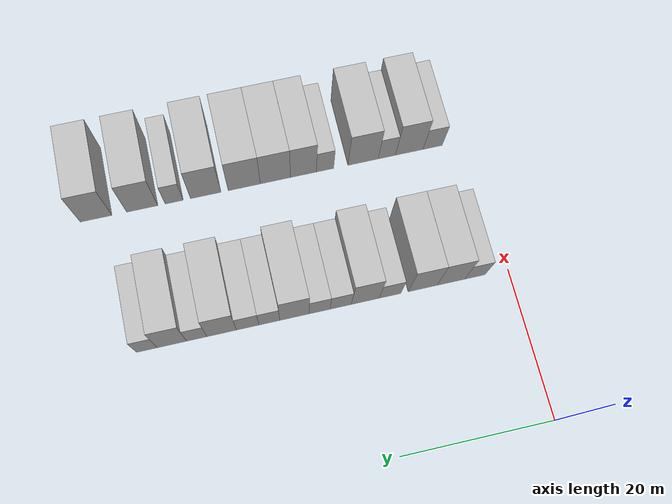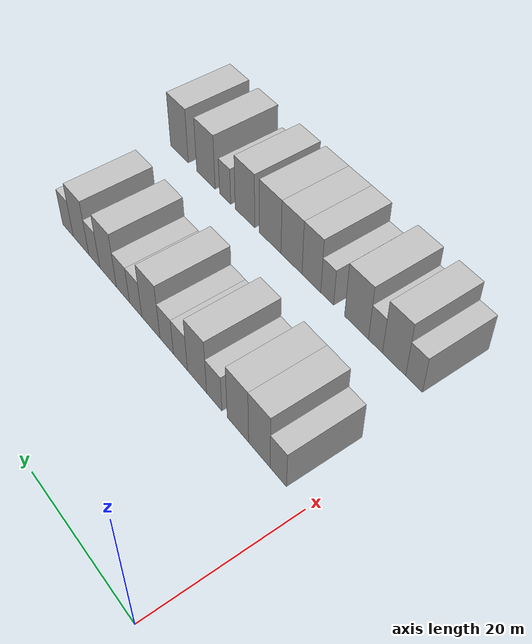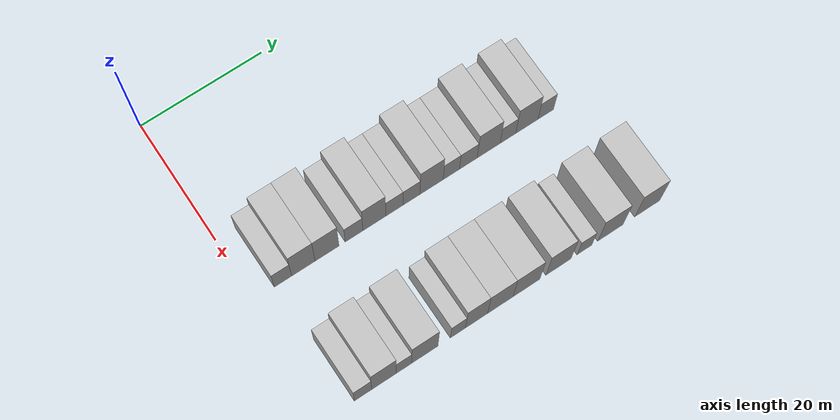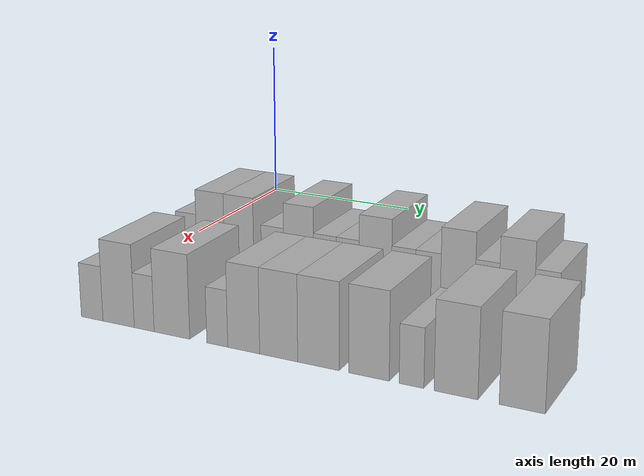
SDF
<sdf version="1.6">
 <world name="default">
  <model name="building_52">
   <static>1</static>
   <pose>25.0000 4.5672 0 0.000000 0.000000 0.000000</pose>
   <link name="link">
    <pose>0 0 3.00 0 0 0</pose>
    <collision name="collision"><geometry><box><size>10.0000 2.7934 6.0000</size></box></geometry></collision>
    <visual name="visual">
     <cast_shadows>0</cast_shadows>
     <geometry><box><size>10.0000 2.7934 6.0000</size></box></geometry>
     <material>
      <script>
       <uri>model://HANNAS_wall/materials/scripts</uri>
       <uri>model://HANNAS_wall/materials/textures</uri>
       <name>vrc/HANNAS_wall</name>
      </script>
     </material>
    </visual>
   </link>
  </model>
  <model name="building_53">
   <static>1</static>
   <pose>25.0000 7.8485 0 0.000000 0.000000 0.000000</pose>
   <link name="link">
    <pose>0 0 4.50 0 0 0</pose>
    <collision name="collision"><geometry><box><size>10.0000 3.7693 9.0000</size></box></geometry></collision>
    <visual name="visual">
     <cast_shadows>0</cast_shadows>
     <geometry><box><size>10.0000 3.7693 9.0000</size></box></geometry>
     <material>
      <script>
       <uri>model://HANNAS_wall/materials/scripts</uri>
       <uri>model://HANNAS_wall/materials/textures</uri>
       <name>vrc/HANNAS_wall</name>
      </script>
     </material>
    </visual>
   </link>
  </model>
  <model name="building_54">
   <static>1</static>
   <pose>25.0000 11.6769 0 0.000000 0.000000 0.000000</pose>
   <link name="link">
    <pose>0 0 4.50 0 0 0</pose>
    <collision name="collision"><geometry><box><size>10.0000 3.8874 9.0000</size></box></geometry></collision>
    <visual name="visual">
     <cast_shadows>0</cast_shadows>
     <geometry><box><size>10.0000 3.8874 9.0000</size></box></geometry>
     <material>
      <script>
       <uri>model://HANNAS_wall/materials/scripts</uri>
       <uri>model://HANNAS_wall/materials/textures</uri>
       <name>vrc/HANNAS_wall</name>
      </script>
     </material>
    </visual>
   </link>
  </model>
  <model name="building_55">
   <static>1</static>
   <pose>25.0000 16.0649 0 0.000000 0.000000 0.000000</pose>
   <link name="link">
    <pose>0 0 3.00 0 0 0</pose>
    <collision name="collision"><geometry><box><size>10.0000 2.8887 6.0000</size></box></geometry></collision>
    <visual name="visual">
     <cast_shadows>0</cast_shadows>
     <geometry><box><size>10.0000 2.8887 6.0000</size></box></geometry>
     <material>
      <script>
       <uri>model://HANNAS_wall/materials/scripts</uri>
       <uri>model://HANNAS_wall/materials/textures</uri>
       <name>vrc/HANNAS_wall</name>
      </script>
     </material>
    </visual>
   </link>
  </model>
  <model name="building_56">
   <static>1</static>
   <pose>25.0000 19.3862 0 0.000000 0.000000 0.000000</pose>
   <link name="link">
    <pose>0 0 4.50 0 0 0</pose>
    <collision name="collision"><geometry><box><size>10.0000 3.7539 9.0000</size></box></geometry></collision>
    <visual name="visual">
     <cast_shadows>0</cast_shadows>
     <geometry><box><size>10.0000 3.7539 9.0000</size></box></geometry>
     <material>
      <script>
       <uri>model://HANNAS_wall/materials/scripts</uri>
       <uri>model://HANNAS_wall/materials/textures</uri>
       <name>vrc/HANNAS_wall</name>
      </script>
     </material>
    </visual>
   </link>
  </model>
  <model name="building_57">
   <static>1</static>
   <pose>25.0000 22.6786 0 0.000000 0.000000 0.000000</pose>
   <link name="link">
    <pose>0 0 3.00 0 0 0</pose>
    <collision name="collision"><geometry><box><size>10.0000 2.8309 6.0000</size></box></geometry></collision>
    <visual name="visual">
     <cast_shadows>0</cast_shadows>
     <geometry><box><size>10.0000 2.8309 6.0000</size></box></geometry>
     <material>
      <script>
       <uri>model://HANNAS_wall/materials/scripts</uri>
       <uri>model://HANNAS_wall/materials/textures</uri>
       <name>vrc/HANNAS_wall</name>
      </script>
     </material>
    </visual>
   </link>
  </model>
  <model name="building_58">
   <static>1</static>
   <pose>25.0000 25.4941 0 0.000000 0.000000 0.000000</pose>
   <link name="link">
    <pose>0 0 3.00 0 0 0</pose>
    <collision name="collision"><geometry><box><size>10.0000 2.8000 6.0000</size></box></geometry></collision>
    <visual name="visual">
     <cast_shadows>0</cast_shadows>
     <geometry><box><size>10.0000 2.8000 6.0000</size></box></geometry>
     <material>
      <script>
       <uri>model://HANNAS_wall/materials/scripts</uri>
       <uri>model://HANNAS_wall/materials/textures</uri>
       <name>vrc/HANNAS_wall</name>
      </script>
     </material>
    </visual>
   </link>
  </model>
  <model name="building_59">
   <static>1</static>
   <pose>25.0000 28.8287 0 0.000000 0.000000 0.000000</pose>
   <link name="link">
    <pose>0 0 4.50 0 0 0</pose>
    <collision name="collision"><geometry><box><size>10.0000 3.8693 9.0000</size></box></geometry></collision>
    <visual name="visual">
     <cast_shadows>0</cast_shadows>
     <geometry><box><size>10.0000 3.8693 9.0000</size></box></geometry>
     <material>
      <script>
       <uri>model://HANNAS_wall/materials/scripts</uri>
       <uri>model://HANNAS_wall/materials/textures</uri>
       <name>vrc/HANNAS_wall</name>
      </script>
     </material>
    </visual>
   </link>
  </model>
  <model name="building_60">
   <static>1</static>
   <pose>25.0000 32.1328 0 0.000000 0.000000 0.000000</pose>
   <link name="link">
    <pose>0 0 3.00 0 0 0</pose>
    <collision name="collision"><geometry><box><size>10.0000 2.7389 6.0000</size></box></geometry></collision>
    <visual name="visual">
     <cast_shadows>0</cast_shadows>
     <geometry><box><size>10.0000 2.7389 6.0000</size></box></geometry>
     <material>
      <script>
       <uri>model://HANNAS_wall/materials/scripts</uri>
       <uri>model://HANNAS_wall/materials/textures</uri>
       <name>vrc/HANNAS_wall</name>
      </script>
     </material>
    </visual>
   </link>
  </model>
  <model name="building_61">
   <static>1</static>
   <pose>25.0000 34.9727 0 0.000000 0.000000 0.000000</pose>
   <link name="link">
    <pose>0 0 3.00 0 0 0</pose>
    <collision name="collision"><geometry><box><size>10.0000 2.9410 6.0000</size></box></geometry></collision>
    <visual name="visual">
     <cast_shadows>0</cast_shadows>
     <geometry><box><size>10.0000 2.9410 6.0000</size></box></geometry>
     <material>
      <script>
       <uri>model://HANNAS_wall/materials/scripts</uri>
       <uri>model://HANNAS_wall/materials/textures</uri>
       <name>vrc/HANNAS_wall</name>
      </script>
     </material>
    </visual>
   </link>
  </model>
  <model name="building_62">
   <static>1</static>
   <pose>25.0000 38.3796 0 0.000000 0.000000 0.000000</pose>
   <link name="link">
    <pose>0 0 4.50 0 0 0</pose>
    <collision name="collision"><geometry><box><size>10.0000 3.8727 9.0000</size></box></geometry></collision>
    <visual name="visual">
     <cast_shadows>0</cast_shadows>
     <geometry><box><size>10.0000 3.8727 9.0000</size></box></geometry>
     <material>
      <script>
       <uri>model://HANNAS_wall/materials/scripts</uri>
       <uri>model://HANNAS_wall/materials/textures</uri>
       <name>vrc/HANNAS_wall</name>
      </script>
     </material>
    </visual>
   </link>
  </model>
  <model name="building_63">
   <static>1</static>
   <pose>25.0000 41.6338 0 0.000000 0.000000 0.000000</pose>
   <link name="link">
    <pose>0 0 3.00 0 0 0</pose>
    <collision name="collision"><geometry><box><size>10.0000 2.6359 6.0000</size></box></geometry></collision>
    <visual name="visual">
     <cast_shadows>0</cast_shadows>
     <geometry><box><size>10.0000 2.6359 6.0000</size></box></geometry>
     <material>
      <script>
       <uri>model://HANNAS_wall/materials/scripts</uri>
       <uri>model://HANNAS_wall/materials/textures</uri>
       <name>vrc/HANNAS_wall</name>
      </script>
     </material>
    </visual>
   </link>
  </model>
  <model name="building_64">
   <static>1</static>
   <pose>25.0000 44.8559 0 0.000000 0.000000 0.000000</pose>
   <link name="link">
    <pose>0 0 4.50 0 0 0</pose>
    <collision name="collision"><geometry><box><size>10.0000 3.8082 9.0000</size></box></geometry></collision>
    <visual name="visual">
     <cast_shadows>0</cast_shadows>
     <geometry><box><size>10.0000 3.8082 9.0000</size></box></geometry>
     <material>
      <script>
       <uri>model://HANNAS_wall/materials/scripts</uri>
       <uri>model://HANNAS_wall/materials/textures</uri>
       <name>vrc/HANNAS_wall</name>
      </script>
     </material>
    </visual>
   </link>
  </model>
  <model name="building_65">
   <static>1</static>
   <pose>25.0000 48.1008 0 0.000000 0.000000 0.000000</pose>
   <link name="link">
    <pose>0 0 3.00 0 0 0</pose>
    <collision name="collision"><geometry><box><size>10.0000 2.6816 6.0000</size></box></geometry></collision>
    <visual name="visual">
     <cast_shadows>0</cast_shadows>
     <geometry><box><size>10.0000 2.6816 6.0000</size></box></geometry>
     <material>
      <script>
       <uri>model://HANNAS_wall/materials/scripts</uri>
       <uri>model://HANNAS_wall/materials/textures</uri>
       <name>vrc/HANNAS_wall</name>
      </script>
     </material>
    </visual>
   </link>
  </model>
  <model name="building_156">
   <static>1</static>
   <pose>44.0000 5.0749 0 0.000000 0.000000 0.000000</pose>
   <link name="link">
    <pose>0 0 3.00 0 0 0</pose>
    <collision name="collision"><geometry><box><size>10.0000 2.7551 6.0000</size></box></geometry></collision>
    <visual name="visual">
     <cast_shadows>0</cast_shadows>
     <geometry><box><size>10.0000 2.7551 6.0000</size></box></geometry>
     <material>
      <script>
       <uri>model://HANNAS_wall/materials/scripts</uri>
       <uri>model://HANNAS_wall/materials/textures</uri>
       <name>vrc/HANNAS_wall</name>
      </script>
     </material>
    </visual>
   </link>
  </model>
  <model name="building_157">
   <static>1</static>
   <pose>44.0000 8.4119 0 0.000000 0.000000 0.000000</pose>
   <link name="link">
    <pose>0 0 4.50 0 0 0</pose>
    <collision name="collision"><geometry><box><size>10.0000 3.9190 9.0000</size></box></geometry></collision>
    <visual name="visual">
     <cast_shadows>0</cast_shadows>
     <geometry><box><size>10.0000 3.9190 9.0000</size></box></geometry>
     <material>
      <script>
       <uri>model://HANNAS_wall/materials/scripts</uri>
       <uri>model://HANNAS_wall/materials/textures</uri>
       <name>vrc/HANNAS_wall</name>
      </script>
     </material>
    </visual>
   </link>
  </model>
  <model name="building_158">
   <static>1</static>
   <pose>44.0000 11.5869 0 0.000000 0.000000 0.000000</pose>
   <link name="link">
    <pose>0 0 3.00 0 0 0</pose>
    <collision name="collision"><geometry><box><size>10.0000 2.4311 6.0000</size></box></geometry></collision>
    <visual name="visual">
     <cast_shadows>0</cast_shadows>
     <geometry><box><size>10.0000 2.4311 6.0000</size></box></geometry>
     <material>
      <script>
       <uri>model://HANNAS_wall/materials/scripts</uri>
       <uri>model://HANNAS_wall/materials/textures</uri>
       <name>vrc/HANNAS_wall</name>
      </script>
     </material>
    </visual>
   </link>
  </model>
  <model name="building_159">
   <static>1</static>
   <pose>44.0000 14.9344 0 0.000000 0.000000 0.000000</pose>
   <link name="link">
    <pose>0 0 4.50 0 0 0</pose>
    <collision name="collision"><geometry><box><size>10.0000 4.2639 9.0000</size></box></geometry></collision>
    <visual name="visual">
     <cast_shadows>0</cast_shadows>
     <geometry><box><size>10.0000 4.2639 9.0000</size></box></geometry>
     <material>
      <script>
       <uri>model://HANNAS_wall/materials/scripts</uri>
       <uri>model://HANNAS_wall/materials/textures</uri>
       <name>vrc/HANNAS_wall</name>
      </script>
     </material>
    </visual>
   </link>
  </model>
  <model name="building_160">
   <static>1</static>
   <pose>44.0000 20.2797 0 0.000000 0.000000 0.000000</pose>
   <link name="link">
    <pose>0 0 3.00 0 0 0</pose>
    <collision name="collision"><geometry><box><size>10.0000 2.4267 6.0000</size></box></geometry></collision>
    <visual name="visual">
     <cast_shadows>0</cast_shadows>
     <geometry><box><size>10.0000 2.4267 6.0000</size></box></geometry>
     <material>
      <script>
       <uri>model://HANNAS_wall/materials/scripts</uri>
       <uri>model://HANNAS_wall/materials/textures</uri>
       <name>vrc/HANNAS_wall</name>
      </script>
     </material>
    </visual>
   </link>
  </model>
  <model name="building_161">
   <static>1</static>
   <pose>44.0000 23.3004 0 0.000000 0.000000 0.000000</pose>
   <link name="link">
    <pose>0 0 4.50 0 0 0</pose>
    <collision name="collision"><geometry><box><size>10.0000 3.6147 9.0000</size></box></geometry></collision>
    <visual name="visual">
     <cast_shadows>0</cast_shadows>
     <geometry><box><size>10.0000 3.6147 9.0000</size></box></geometry>
     <material>
      <script>
       <uri>model://HANNAS_wall/materials/scripts</uri>
       <uri>model://HANNAS_wall/materials/textures</uri>
       <name>vrc/HANNAS_wall</name>
      </script>
     </material>
    </visual>
   </link>
  </model>
  <model name="building_162">
   <static>1</static>
   <pose>44.0000 27.2011 0 0.000000 0.000000 0.000000</pose>
   <link name="link">
    <pose>0 0 4.50 0 0 0</pose>
    <collision name="collision"><geometry><box><size>10.0000 4.1866 9.0000</size></box></geometry></collision>
    <visual name="visual">
     <cast_shadows>0</cast_shadows>
     <geometry><box><size>10.0000 4.1866 9.0000</size></box></geometry>
     <material>
      <script>
       <uri>model://HANNAS_wall/materials/scripts</uri>
       <uri>model://HANNAS_wall/materials/textures</uri>
       <name>vrc/HANNAS_wall</name>
      </script>
     </material>
    </visual>
   </link>
  </model>
  <model name="building_163">
   <static>1</static>
   <pose>44.0000 31.5119 0 0.000000 0.000000 0.000000</pose>
   <link name="link">
    <pose>0 0 4.50 0 0 0</pose>
    <collision name="collision"><geometry><box><size>10.0000 4.4351 9.0000</size></box></geometry></collision>
    <visual name="visual">
     <cast_shadows>0</cast_shadows>
     <geometry><box><size>10.0000 4.4351 9.0000</size></box></geometry>
     <material>
      <script>
       <uri>model://HANNAS_wall/materials/scripts</uri>
       <uri>model://HANNAS_wall/materials/textures</uri>
       <name>vrc/HANNAS_wall</name>
      </script>
     </material>
    </visual>
   </link>
  </model>
  <model name="building_164">
   <static>1</static>
   <pose>44.0000 36.8222 0 0.000000 0.000000 0.000000</pose>
   <link name="link">
    <pose>0 0 4.50 0 0 0</pose>
    <collision name="collision"><geometry><box><size>10.0000 4.1855 9.0000</size></box></geometry></collision>
    <visual name="visual">
     <cast_shadows>0</cast_shadows>
     <geometry><box><size>10.0000 4.1855 9.0000</size></box></geometry>
     <material>
      <script>
       <uri>model://HANNAS_wall/materials/scripts</uri>
       <uri>model://HANNAS_wall/materials/textures</uri>
       <name>vrc/HANNAS_wall</name>
      </script>
     </material>
    </visual>
   </link>
  </model>
  <model name="building_165">
   <static>1</static>
   <pose>44.0000 41.1498 0 0.000000 0.000000 0.000000</pose>
   <link name="link">
    <pose>0 0 3.00 0 0 0</pose>
    <collision name="collision"><geometry><box><size>10.0000 2.4698 6.0000</size></box></geometry></collision>
    <visual name="visual">
     <cast_shadows>0</cast_shadows>
     <geometry><box><size>10.0000 2.4698 6.0000</size></box></geometry>
     <material>
      <script>
       <uri>model://HANNAS_wall/materials/scripts</uri>
       <uri>model://HANNAS_wall/materials/textures</uri>
       <name>vrc/HANNAS_wall</name>
      </script>
     </material>
    </visual>
   </link>
  </model>
  <model name="building_166">
   <static>1</static>
   <pose>44.0000 45.5092 0 0.000000 0.000000 0.000000</pose>
   <link name="link">
    <pose>0 0 4.50 0 0 0</pose>
    <collision name="collision"><geometry><box><size>10.0000 4.2492 9.0000</size></box></geometry></collision>
    <visual name="visual">
     <cast_shadows>0</cast_shadows>
     <geometry><box><size>10.0000 4.2492 9.0000</size></box></geometry>
     <material>
      <script>
       <uri>model://HANNAS_wall/materials/scripts</uri>
       <uri>model://HANNAS_wall/materials/textures</uri>
       <name>vrc/HANNAS_wall</name>
      </script>
     </material>
    </visual>
   </link>
  </model>
  <model name="building_167">
   <static>1</static>
   <pose>44.0000 51.7699 0 0.000000 0.000000 0.000000</pose>
   <link name="link">
    <pose>0 0 4.50 0 0 0</pose>
    <collision name="collision"><geometry><box><size>10.0000 4.2721 9.0000</size></box></geometry></collision>
    <visual name="visual">
     <cast_shadows>0</cast_shadows>
     <geometry><box><size>10.0000 4.2721 9.0000</size></box></geometry>
     <material>
      <script>
       <uri>model://HANNAS_wall/materials/scripts</uri>
       <uri>model://HANNAS_wall/materials/textures</uri>
       <name>vrc/HANNAS_wall</name>
      </script>
     </material>
    </visual>
   </link>
  </model>
 </world>
</sdf>
